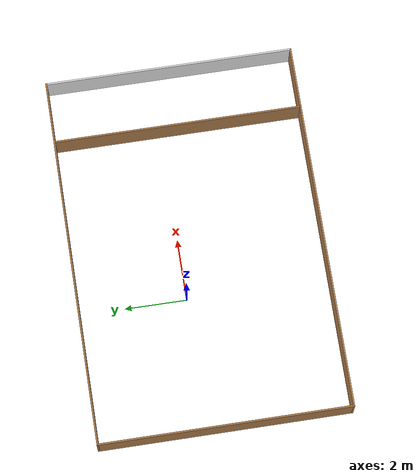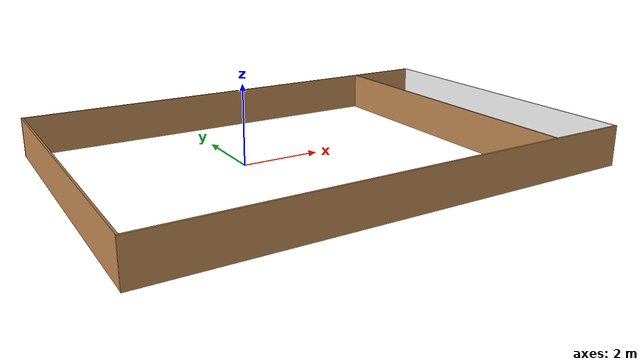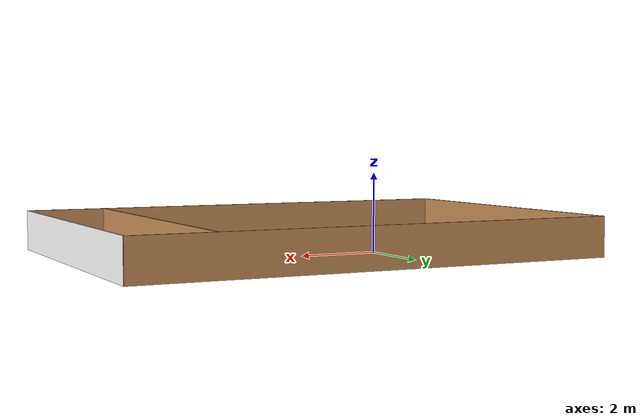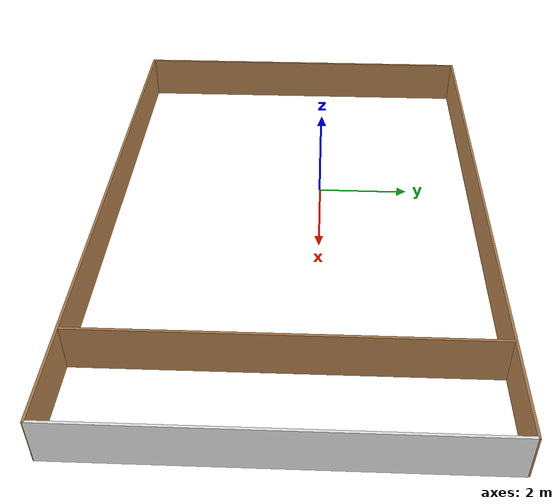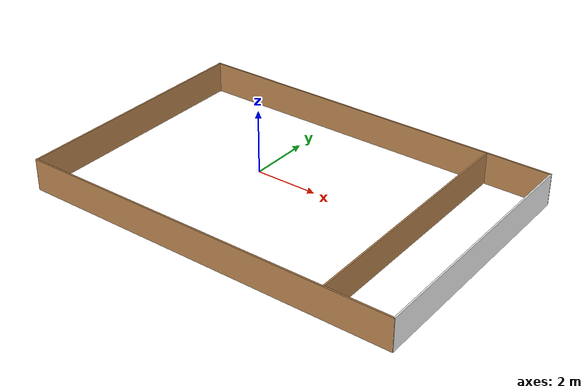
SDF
<?xml version="1.0"?>
<sdf version="1.5">
    <model name="walls">
        <static>true</static>
        <link name="wall_1">
            <pose>7.57 -0.57 0.5 0 0 0</pose>
            <static>true</static>
            <inertial>
                <mass>1.0</mass>
                <inertia>
                    <!-- inertias are tricky to compute -->
                    <ixx>1</ixx> <!-- for a box: ixx = 0.083 * mass * (y*y + z*z) -->
                    <ixy>0</ixy> <!-- for a box: ixy = 0 -->
                    <ixz>0</ixz> <!-- for a box: ixz = 0 -->
                    <iyy>1</iyy> <!-- for a box: iyy = 0.083 * mass * (x*x + z*z) -->
                    <iyz>0</iyz> <!-- for a box: iyz = 0 -->
                    <izz>1</izz> <!-- for a box: izz = 0.083 * mass * (x*x + y*y) -->
                </inertia>
            </inertial>
            <collision name="collision">
                <geometry>
                    <box>
                        <size>0.05 8 1</size>
                    </box>
                </geometry>
            </collision>
            <visual name="visual">
                <geometry>
                    <box>
                        <size>0.05 8 1</size>
                    </box>
                </geometry>
                <material>
                    <script>
                        <uri>file://usr/share/gazebo-11/media/materials/scripts/gazebo.material</uri>
                        <name>Gazebo/White</name>
                    </script>
                </material>
            </visual>
        </link>

        <link name="wall_2">
            <pose>-4.38 -0.57 0.5 0 0 0</pose>
            <static>true</static>
            <inertial>
                <mass>1.0</mass>
                <inertia>
                    <!-- inertias are tricky to compute -->
                    <ixx>1</ixx> <!-- for a box: ixx = 0.083 * mass * (y*y + z*z) -->
                    <ixy>0</ixy> <!-- for a box: ixy = 0 -->
                    <ixz>0</ixz> <!-- for a box: ixz = 0 -->
                    <iyy>1</iyy> <!-- for a box: iyy = 0.083 * mass * (x*x + z*z) -->
                    <iyz>0</iyz> <!-- for a box: iyz = 0 -->
                    <izz>1</izz> <!-- for a box: izz = 0.083 * mass * (x*x + y*y) -->
                </inertia>
            </inertial>
            <collision name="collision">
                <geometry>
                    <box>
                        <size>0.05 8 1</size>
                    </box>
                </geometry>
            </collision>
            <visual name="visual">
                <geometry>
                    <box>
                        <size>0.05 8 1</size>
                    </box>
                </geometry>
                <material>
                    <script>
                        <uri>file://usr/share/gazebo-11/media/materials/scripts/gazebo.material</uri>
                        <name>Gazebo/Wood</name>
                    </script>
                </material>
            </visual>
        </link>

        <link name="wall_3">
            <pose>1.59 -4.56 0.5 0 0 0</pose>
            <static>true</static>
            <inertial>
                <mass>1.0</mass>
                <inertia>
                    <!-- inertias are tricky to compute -->
                    <ixx>1</ixx> <!-- for a box: ixx = 0.083 * mass * (y*y + z*z) -->
                    <ixy>0</ixy> <!-- for a box: ixy = 0 -->
                    <ixz>0</ixz> <!-- for a box: ixz = 0 -->
                    <iyy>1</iyy> <!-- for a box: iyy = 0.083 * mass * (x*x + z*z) -->
                    <iyz>0</iyz> <!-- for a box: iyz = 0 -->
                    <izz>1</izz> <!-- for a box: izz = 0.083 * mass * (x*x + y*y) -->
                </inertia>
            </inertial>
            <collision name="collision">
                <geometry>
                    <box>
                        <size>12 0.05 1</size>
                    </box>
                </geometry>
            </collision>
            <visual name="visual">
                <geometry>
                    <box>
                        <size>12 0.05 1</size>
                    </box>
                </geometry>
                <material>
                    <script>
                        <uri>file://usr/share/gazebo-11/media/materials/scripts/gazebo.material</uri>
                        <name>Gazebo/Wood</name>
                    </script>
                </material>
            </visual>
        </link>

        <link name="wall_4">
            <pose>1.59 3.44 0.5 0 0 0</pose>
            <static>true</static>
            <inertial>
                <mass>1.0</mass>
                <inertia>
                    <!-- inertias are tricky to compute -->
                    <ixx>1</ixx> <!-- for a box: ixx = 0.083 * mass * (y*y + z*z) -->
                    <ixy>0</ixy> <!-- for a box: ixy = 0 -->
                    <ixz>0</ixz> <!-- for a box: ixz = 0 -->
                    <iyy>1</iyy> <!-- for a box: iyy = 0.083 * mass * (x*x + z*z) -->
                    <iyz>0</iyz> <!-- for a box: iyz = 0 -->
                    <izz>1</izz> <!-- for a box: izz = 0.083 * mass * (x*x + y*y) -->
                </inertia>
            </inertial>
            <collision name="collision">
                <geometry>
                    <box>
                        <size>12 0.05 1</size>
                    </box>
                </geometry>
            </collision>
            <visual name="visual">
                <geometry>
                    <box>
                        <size>12 0.05 1</size>
                    </box>
                </geometry>
                <material>
                    <script>
                        <uri>file://usr/share/gazebo-11/media/materials/scripts/gazebo.material</uri>
                        <name>Gazebo/Wood</name>
                    </script>
                </material>
            </visual>
        </link>

        <link name="wall_5">
            <pose>5.57 -0.57 0.5 0 0 0</pose>
            <static>true</static>
            <inertial>
                <mass>1.0</mass>
                <inertia>
                    <!-- inertias are tricky to compute -->
                    <ixx>1</ixx> <!-- for a box: ixx = 0.083 * mass * (y*y + z*z) -->
                    <ixy>0</ixy> <!-- for a box: ixy = 0 -->
                    <ixz>0</ixz> <!-- for a box: ixz = 0 -->
                    <iyy>1</iyy> <!-- for a box: iyy = 0.083 * mass * (x*x + z*z) -->
                    <iyz>0</iyz> <!-- for a box: iyz = 0 -->
                    <izz>1</izz> <!-- for a box: izz = 0.083 * mass * (x*x + y*y) -->
                </inertia>
            </inertial>
            <collision name="collision">
                <geometry>
                    <box>
                        <size>0.05 8 1</size>
                    </box>
                </geometry>
            </collision>
            <visual name="visual">
                <geometry>
                    <box>
                        <size>0.05 8 1</size>
                    </box>
                </geometry>
                <material>
                    <script>
                        <uri>file://usr/share/gazebo-11/media/materials/scripts/gazebo.material</uri>
                        <name>Gazebo/Wood</name>
                    </script>
                </material>
            </visual>
        </link>

    </model>
</sdf>
